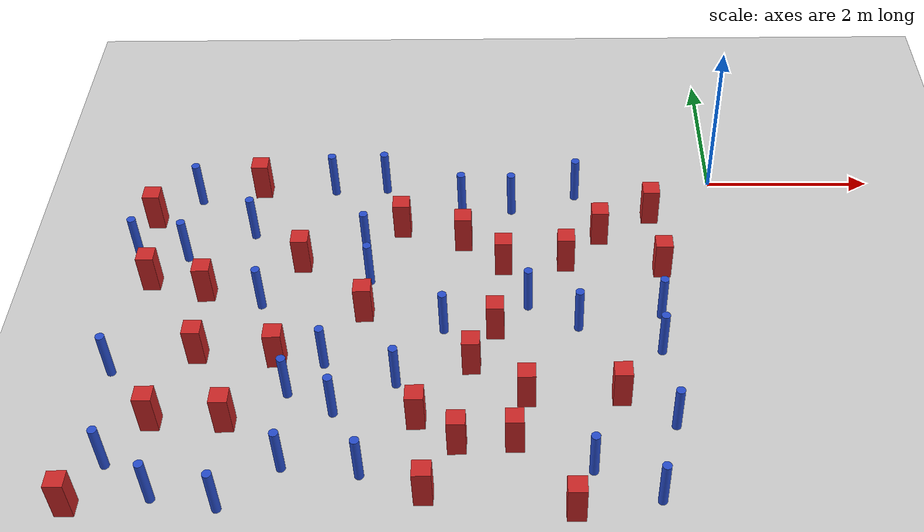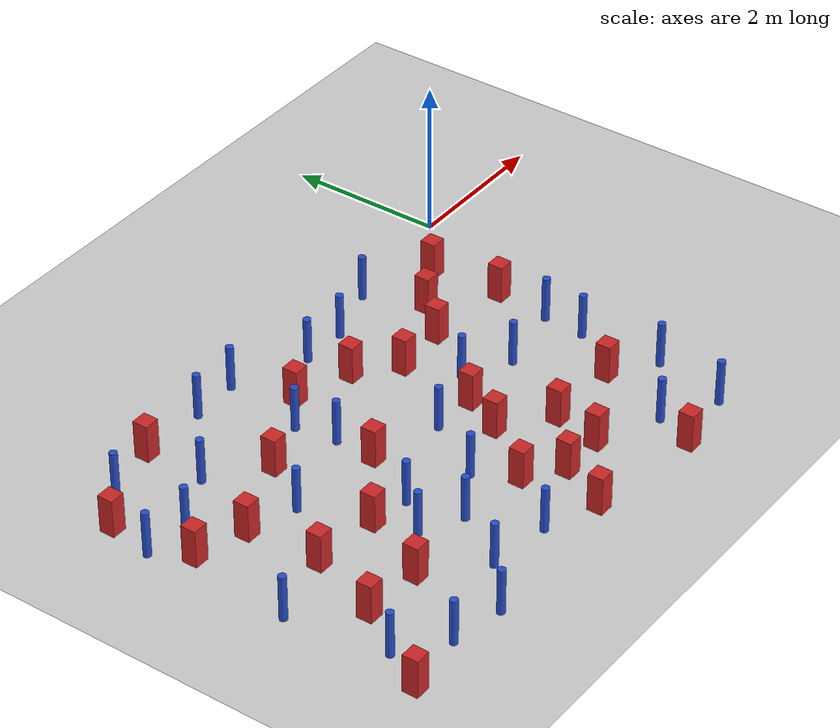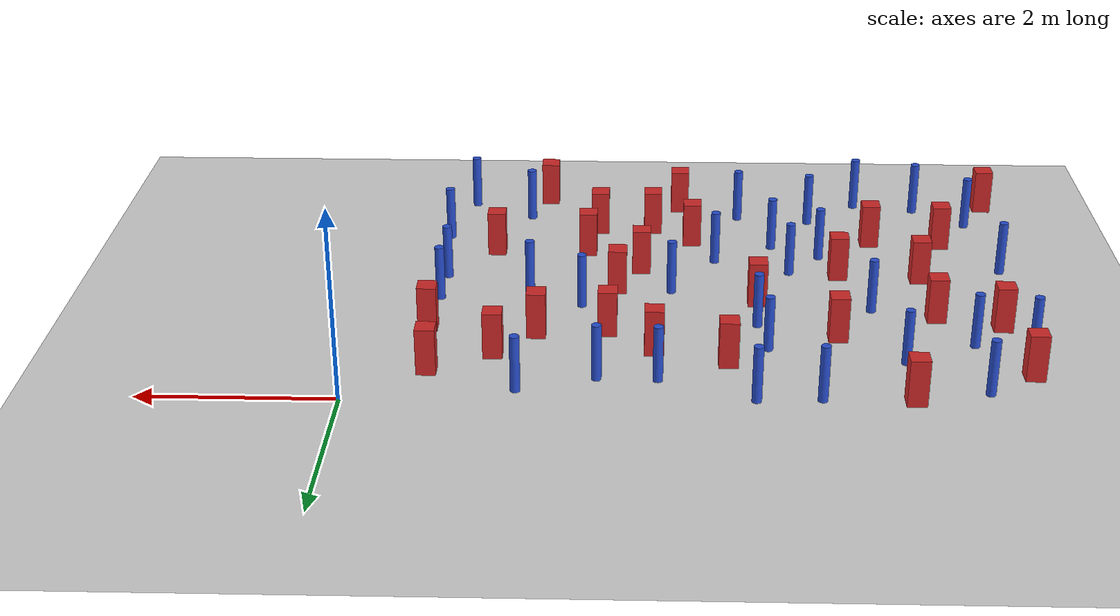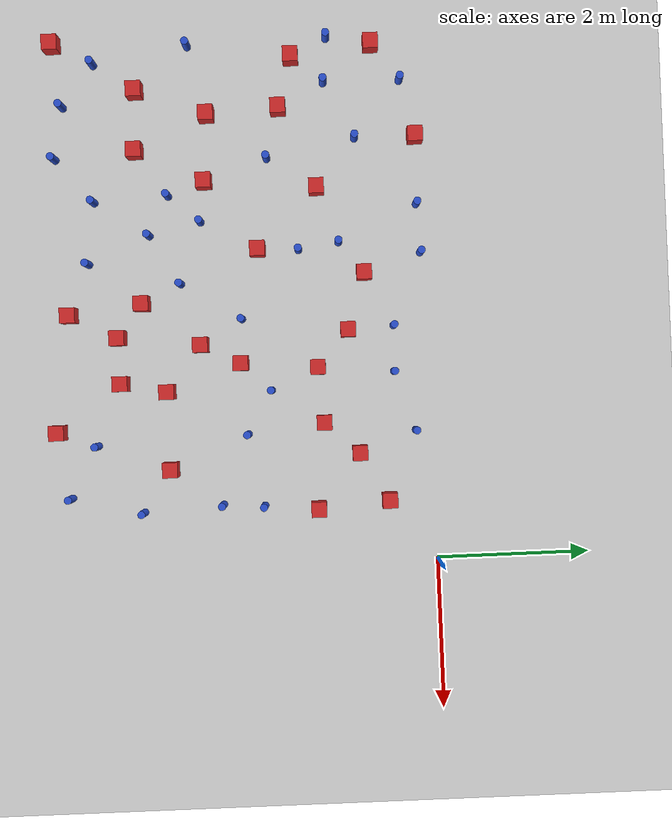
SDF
<sdf version="1.6">
 <world name="default">
  <model name="ground_plane">
   <static>1</static>
   <link name="link">
    <collision name="collision">
     <geometry><plane><normal>0 0 1</normal><size>100 100</size></plane></geometry>
     <surface><friction><ode><mu>100</mu><mu2>50</mu2></ode></friction></surface>
    </collision>
    <visual name="visual">
     <cast_shadows>0</cast_shadows>
     <geometry><plane><normal>0 0 1</normal><size>100 100</size></plane></geometry>
     <material>
      <ambient>1.0 1.0 1.0 1.0</ambient>
      <diffuse>0.8 0.8 0.8 1.0</diffuse>
      <specular>0.01 0.01 0.01 1.000000</specular>
     </material>
    </visual>
   </link>
  </model>
  <model name="square_post_obstacle8">
   <static>true</static>
   <pose>-3.50885296934 -3.76705480236 1.91545236811e-07 -7.35059704564e-06 1.12565212e-07 2.39332434364e-05</pose>
   <link name="link">
    <pose>0 0 0.25 0 -0 0</pose>
    <inertial>
     <mass>100</mass>
     <inertia>
      <ixx>0.166667</ixx>
      <ixy>0</ixy>
      <ixz>0</ixz>
      <iyy>0.166667</iyy>
      <iyz>0</iyz>
      <izz>0.166667</izz>
     </inertia>
    </inertial>
    <collision name="collision"><geometry><box><size>.2 .2 .5</size></box></geometry></collision>
    <visual name="visual">
     <geometry><box><size>.2 .2 .5</size></box></geometry>
     <material>
      <script><name>Gazebo/Red</name><uri>file://media/materials/scripts/gazebo.material</uri></script>
     </material>
    </visual>
   </link>
  </model>
  <model name="square_post_obstacle13">
   <static>true</static>
   <pose>-4.16992679024 -2.21531199736 1.91545236811e-07 -7.35059704564e-06 1.12565212e-07 2.39332434364e-05</pose>
   <link name="link">
    <pose>0 0 0.25 0 -0 0</pose>
    <inertial>
     <mass>100</mass>
     <inertia>
      <ixx>0.166667</ixx>
      <ixy>0</ixy>
      <ixz>0</ixz>
      <iyy>0.166667</iyy>
      <iyz>0</iyz>
      <izz>0.166667</izz>
     </inertia>
    </inertial>
    <collision name="collision"><geometry><box><size>.2 .2 .5</size></box></geometry></collision>
    <visual name="visual">
     <geometry><box><size>.2 .2 .5</size></box></geometry>
     <material>
      <script><name>Gazebo/Red</name><uri>file://media/materials/scripts/gazebo.material</uri></script>
     </material>
    </visual>
   </link>
  </model>
  <model name="square_post_obstacle20">
   <static>true</static>
   <pose>-2.93497238038 -3.01322514498 1.91545236811e-07 -7.35059704564e-06 1.12565212e-07 2.39332434364e-05</pose>
   <link name="link">
    <pose>0 0 0.25 0 -0 0</pose>
    <inertial>
     <mass>100</mass>
     <inertia>
      <ixx>0.166667</ixx>
      <ixy>0</ixy>
      <ixz>0</ixz>
      <iyy>0.166667</iyy>
      <iyz>0</iyz>
      <izz>0.166667</izz>
     </inertia>
    </inertial>
    <collision name="collision"><geometry><box><size>.2 .2 .5</size></box></geometry></collision>
    <visual name="visual">
     <geometry><box><size>.2 .2 .5</size></box></geometry>
     <material>
      <script><name>Gazebo/Red</name><uri>file://media/materials/scripts/gazebo.material</uri></script>
     </material>
    </visual>
   </link>
  </model>
  <model name="pole_obstacle13">
   <static>true</static>
   <pose>-5.36995046791 -2.05261547743 7.38925637345e-09 -8.47170692798e-08 1.24976764937e-08 -1.74513093023e-07</pose>
   <link name="link">
    <pose>0 0 0.3 0 -0 0</pose>
    <inertial>
     <mass>1</mass>
     <inertia><ixx>0.145833</ixx><ixy>0</ixy><ixz>0</ixz><iyy>0.145833</iyy><iyz>0</iyz><izz>0.125</izz></inertia>
    </inertial>
    <collision name="collision">
     <geometry><cylinder><radius>0.05</radius><length>.6</length></cylinder></geometry>
    </collision>
    <visual name="visual">
     <geometry><cylinder><radius>0.05</radius><length>.6</length></cylinder></geometry>
     <material>
      <script><name>Gazebo/Blue</name><uri>file://media/materials/scripts/gazebo.material</uri></script>
     </material>
    </visual>
   </link>
  </model>
  <model name="pole_obstacle14">
   <static>true</static>
   <pose>-2.30070272492 -2.10515329835 7.38925637345e-09 -8.47170692798e-08 1.24976764939e-08 -1.74513093025e-07</pose>
   <link name="link">
    <pose>0 0 0.3 0 -0 0</pose>
    <inertial>
     <mass>1</mass>
     <inertia><ixx>0.145833</ixx><ixy>0</ixy><ixz>0</ixz><iyy>0.145833</iyy><iyz>0</iyz><izz>0.125</izz></inertia>
    </inertial>
    <collision name="collision">
     <geometry><cylinder><radius>0.05</radius><length>.6</length></cylinder></geometry>
    </collision>
    <visual name="visual">
     <geometry><cylinder><radius>0.05</radius><length>.6</length></cylinder></geometry>
     <material>
      <script><name>Gazebo/Blue</name><uri>file://media/materials/scripts/gazebo.material</uri></script>
     </material>
    </visual>
   </link>
  </model>
  <model name="square_post_obstacle24">
   <static>true</static>
   <pose>-1.85153027986 -4.93886895297 1.91545236811e-07 -7.35059704564e-06 1.12565212e-07 2.39332434364e-05</pose>
   <link name="link">
    <pose>0 0 0.25 0 -0 0</pose>
    <inertial>
     <mass>100</mass>
     <inertia>
      <ixx>0.166667</ixx>
      <ixy>0</ixy>
      <ixz>0</ixz>
      <iyy>0.166667</iyy>
      <iyz>0</iyz>
      <izz>0.166667</izz>
     </inertia>
    </inertial>
    <collision name="collision"><geometry><box><size>.2 .2 .5</size></box></geometry></collision>
    <visual name="visual">
     <geometry><box><size>.2 .2 .5</size></box></geometry>
     <material>
      <script><name>Gazebo/Red</name><uri>file://media/materials/scripts/gazebo.material</uri></script>
     </material>
    </visual>
   </link>
  </model>
  <model name="square_post_obstacle28">
   <static>true</static>
   <pose>-0.715513095429 -1.54085385511 1.91545236811e-07 -7.35059704564e-06 1.12565212e-07 2.39332434364e-05</pose>
   <link name="link">
    <pose>0 0 0.25 0 -0 0</pose>
    <inertial>
     <mass>100</mass>
     <inertia>
      <ixx>0.166667</ixx>
      <ixy>0</ixy>
      <ixz>0</ixz>
      <iyy>0.166667</iyy>
      <iyz>0</iyz>
      <izz>0.166667</izz>
     </inertia>
    </inertial>
    <collision name="collision"><geometry><box><size>.2 .2 .5</size></box></geometry></collision>
    <visual name="visual">
     <geometry><box><size>.2 .2 .5</size></box></geometry>
     <material>
      <script><name>Gazebo/Red</name><uri>file://media/materials/scripts/gazebo.material</uri></script>
     </material>
    </visual>
   </link>
  </model>
  <model name="square_post_obstacle30">
   <static>true</static>
   <pose>-6.97034201586 -4.82456648021 1.91545236811e-07 -7.35059704564e-06 1.12565212e-07 2.39332434364e-05</pose>
   <link name="link">
    <pose>0 0 0.25 0 -0 0</pose>
    <inertial>
     <mass>100</mass>
     <inertia>
      <ixx>0.166667</ixx>
      <ixy>0</ixy>
      <ixz>0</ixz>
      <iyy>0.166667</iyy>
      <iyz>0</iyz>
      <izz>0.166667</izz>
     </inertia>
    </inertial>
    <collision name="collision"><geometry><box><size>.2 .2 .5</size></box></geometry></collision>
    <visual name="visual">
     <geometry><box><size>.2 .2 .5</size></box></geometry>
     <material>
      <script><name>Gazebo/Red</name><uri>file://media/materials/scripts/gazebo.material</uri></script>
     </material>
    </visual>
   </link>
  </model>
  <model name="pole_obstacle21">
   <static>true</static>
   <pose>-4.0481126402 -0.070048766778 7.38925637345e-09 -8.471706928e-08 1.24976765153e-08 -1.74513093013e-07</pose>
   <link name="link">
    <pose>0 0 0.3 0 -0 0</pose>
    <inertial>
     <mass>1</mass>
     <inertia><ixx>0.145833</ixx><ixy>0</ixy><ixz>0</ixz><iyy>0.145833</iyy><iyz>0</iyz><izz>0.125</izz></inertia>
    </inertial>
    <collision name="collision">
     <geometry><cylinder><radius>0.05</radius><length>.6</length></cylinder></geometry>
    </collision>
    <visual name="visual">
     <geometry><cylinder><radius>0.05</radius><length>.6</length></cylinder></geometry>
     <material>
      <script><name>Gazebo/Blue</name><uri>file://media/materials/scripts/gazebo.material</uri></script>
     </material>
    </visual>
   </link>
  </model>
  <model name="pole_obstacle22">
   <static>true</static>
   <pose>-0.749253565778 -3.85481929524 7.38925637345e-09 -8.47170692799e-08 1.2497676509e-08 -1.74513093016e-07</pose>
   <link name="link">
    <pose>0 0 0.3 0 -0 0</pose>
    <inertial>
     <mass>1</mass>
     <inertia><ixx>0.145833</ixx><ixy>0</ixy><ixz>0</ixz><iyy>0.145833</iyy><iyz>0</iyz><izz>0.125</izz></inertia>
    </inertial>
    <collision name="collision">
     <geometry><cylinder><radius>0.05</radius><length>.6</length></cylinder></geometry>
    </collision>
    <visual name="visual">
     <geometry><cylinder><radius>0.05</radius><length>.6</length></cylinder></geometry>
     <material>
      <script><name>Gazebo/Blue</name><uri>file://media/materials/scripts/gazebo.material</uri></script>
     </material>
    </visual>
   </link>
  </model>
  <model name="pole_obstacle28">
   <static>true</static>
   <pose>-1.70135411416 -0.22149524721 7.38925637345e-09 -8.47170692798e-08 1.24976764982e-08 -1.74513093023e-07</pose>
   <link name="link">
    <pose>0 0 0.3 0 -0 0</pose>
    <inertial>
     <mass>1</mass>
     <inertia><ixx>0.145833</ixx><ixy>0</ixy><ixz>0</ixz><iyy>0.145833</iyy><iyz>0</iyz><izz>0.125</izz></inertia>
    </inertial>
    <collision name="collision">
     <geometry><cylinder><radius>0.05</radius><length>.6</length></cylinder></geometry>
    </collision>
    <visual name="visual">
     <geometry><cylinder><radius>0.05</radius><length>.6</length></cylinder></geometry>
     <material>
      <script><name>Gazebo/Blue</name><uri>file://media/materials/scripts/gazebo.material</uri></script>
     </material>
    </visual>
   </link>
  </model>
  <model name="pole_obstacle31">
   <static>true</static>
   <pose>-2.48924332453 -0.478023941891 7.38925637345e-09 -8.471706928e-08 1.2497676509e-08 -1.74513093016e-07</pose>
   <link name="link">
    <pose>0 0 0.3 0 -0 0</pose>
    <inertial>
     <mass>1</mass>
     <inertia><ixx>0.145833</ixx><ixy>0</ixy><ixz>0</ixz><iyy>0.145833</iyy><iyz>0</iyz><izz>0.125</izz></inertia>
    </inertial>
    <collision name="collision">
     <geometry><cylinder><radius>0.05</radius><length>.6</length></cylinder></geometry>
    </collision>
    <visual name="visual">
     <geometry><cylinder><radius>0.05</radius><length>.6</length></cylinder></geometry>
     <material>
      <script><name>Gazebo/Blue</name><uri>file://media/materials/scripts/gazebo.material</uri></script>
     </material>
    </visual>
   </link>
  </model>
  <model name="pole_obstacle37">
   <static>true</static>
   <pose>-6.34415291776 -1.2671829582 7.38925637345e-09 -8.471706928e-08 1.24976765134e-08 -1.74513093015e-07</pose>
   <link name="link">
    <pose>0 0 0.3 0 -0 0</pose>
    <inertial>
     <mass>1</mass>
     <inertia><ixx>0.145833</ixx><ixy>0</ixy><ixz>0</ixz><iyy>0.145833</iyy><iyz>0</iyz><izz>0.125</izz></inertia>
    </inertial>
    <collision name="collision">
     <geometry><cylinder><radius>0.05</radius><length>.6</length></cylinder></geometry>
    </collision>
    <visual name="visual">
     <geometry><cylinder><radius>0.05</radius><length>.6</length></cylinder></geometry>
     <material>
      <script><name>Gazebo/Blue</name><uri>file://media/materials/scripts/gazebo.material</uri></script>
     </material>
    </visual>
   </link>
  </model>
  <model name="square_post_obstacle56">
   <static>true</static>
   <pose>-1.43219768758 -0.971955510996 1.91545236811e-07 -7.35059704564e-06 1.12565212e-07 2.39332434364e-05</pose>
   <link name="link">
    <pose>0 0 0.25 0 -0 0</pose>
    <inertial>
     <mass>100</mass>
     <inertia>
      <ixx>0.166667</ixx>
      <ixy>0</ixy>
      <ixz>0</ixz>
      <iyy>0.166667</iyy>
      <iyz>0</iyz>
      <izz>0.166667</izz>
     </inertia>
    </inertial>
    <collision name="collision"><geometry><box><size>.2 .2 .5</size></box></geometry></collision>
    <visual name="visual">
     <geometry><box><size>.2 .2 .5</size></box></geometry>
     <material>
      <script><name>Gazebo/Red</name><uri>file://media/materials/scripts/gazebo.material</uri></script>
     </material>
    </visual>
   </link>
  </model>
  <model name="square_post_obstacle62">
   <static>true</static>
   <pose>-5.52889303577 -3.7830511791 1.91545236811e-07 -7.35059704564e-06 1.12565212e-07 2.39332434364e-05</pose>
   <link name="link">
    <pose>0 0 0.25 0 -0 0</pose>
    <inertial>
     <mass>100</mass>
     <inertia>
      <ixx>0.166667</ixx>
      <ixy>0</ixy>
      <ixz>0</ixz>
      <iyy>0.166667</iyy>
      <iyz>0</iyz>
      <izz>0.166667</izz>
     </inertia>
    </inertial>
    <collision name="collision"><geometry><box><size>.2 .2 .5</size></box></geometry></collision>
    <visual name="visual">
     <geometry><box><size>.2 .2 .5</size></box></geometry>
     <material>
      <script><name>Gazebo/Red</name><uri>file://media/materials/scripts/gazebo.material</uri></script>
     </material>
    </visual>
   </link>
  </model>
  <model name="pole_obstacle62">
   <static>true</static>
   <pose>-0.811082550551 -2.80279782522 7.38925637345e-09 -8.47170692799e-08 1.2497676509e-08 -1.74513093016e-07</pose>
   <link name="link">
    <pose>0 0 0.3 0 -0 0</pose>
    <inertial>
     <mass>1</mass>
     <inertia><ixx>0.145833</ixx><ixy>0</ixy><ixz>0</ixz><iyy>0.145833</iyy><iyz>0</iyz><izz>0.125</izz></inertia>
    </inertial>
    <collision name="collision">
     <geometry><cylinder><radius>0.05</radius><length>.6</length></cylinder></geometry>
    </collision>
    <visual name="visual">
     <geometry><cylinder><radius>0.05</radius><length>.6</length></cylinder></geometry>
     <material>
      <script><name>Gazebo/Blue</name><uri>file://media/materials/scripts/gazebo.material</uri></script>
     </material>
    </visual>
   </link>
  </model>
  <model name="pole_obstacle67">
   <static>true</static>
   <pose>-0.974625489835 -4.8024280334 7.38925637345e-09 -8.47170692799e-08 1.2497676509e-08 -1.74513093015e-07</pose>
   <link name="link">
    <pose>0 0 0.3 0 -0 0</pose>
    <inertial>
     <mass>1</mass>
     <inertia><ixx>0.145833</ixx><ixy>0</ixy><ixz>0</ixz><iyy>0.145833</iyy><iyz>0</iyz><izz>0.125</izz></inertia>
    </inertial>
    <collision name="collision">
     <geometry><cylinder><radius>0.05</radius><length>.6</length></cylinder></geometry>
    </collision>
    <visual name="visual">
     <geometry><cylinder><radius>0.05</radius><length>.6</length></cylinder></geometry>
     <material>
      <script><name>Gazebo/Blue</name><uri>file://media/materials/scripts/gazebo.material</uri></script>
     </material>
    </visual>
   </link>
  </model>
  <model name="pole_obstacle68">
   <static>true</static>
   <pose>-6.33371758601 -0.260582448378 7.38925637345e-09 -8.47170692801e-08 1.24976765176e-08 -1.74513093013e-07</pose>
   <link name="link">
    <pose>0 0 0.3 0 -0 0</pose>
    <inertial>
     <mass>1</mass>
     <inertia><ixx>0.145833</ixx><ixy>0</ixy><ixz>0</ixz><iyy>0.145833</iyy><iyz>0</iyz><izz>0.125</izz></inertia>
    </inertial>
    <collision name="collision">
     <geometry><cylinder><radius>0.05</radius><length>.6</length></cylinder></geometry>
    </collision>
    <visual name="visual">
     <geometry><cylinder><radius>0.05</radius><length>.6</length></cylinder></geometry>
     <material>
      <script><name>Gazebo/Blue</name><uri>file://media/materials/scripts/gazebo.material</uri></script>
     </material>
    </visual>
   </link>
  </model>
  <model name="square_post_obstacle74">
   <static>true</static>
   <pose>-4.95555530657 -1.40984395401 1.91545236811e-07 -7.35059704564e-06 1.12565212e-07 2.39332434364e-05</pose>
   <link name="link">
    <pose>0 0 0.25 0 -0 0</pose>
    <inertial>
     <mass>100</mass>
     <inertia>
      <ixx>0.166667</ixx>
      <ixy>0</ixy>
      <ixz>0</ixz>
      <iyy>0.166667</iyy>
      <iyz>0</iyz>
      <izz>0.166667</izz>
     </inertia>
    </inertial>
    <collision name="collision"><geometry><box><size>.2 .2 .5</size></box></geometry></collision>
    <visual name="visual">
     <geometry><box><size>.2 .2 .5</size></box></geometry>
     <material>
      <script><name>Gazebo/Red</name><uri>file://media/materials/scripts/gazebo.material</uri></script>
     </material>
    </visual>
   </link>
  </model>
  <model name="pole_obstacle76">
   <static>true</static>
   <pose>-4.22513522008 -1.14646456597 7.38925637345e-09 -8.471706928e-08 1.24976765134e-08 -1.74513093015e-07</pose>
   <link name="link">
    <pose>0 0 0.3 0 -0 0</pose>
    <inertial>
     <mass>1</mass>
     <inertia><ixx>0.145833</ixx><ixy>0</ixy><ixz>0</ixz><iyy>0.145833</iyy><iyz>0</iyz><izz>0.125</izz></inertia>
    </inertial>
    <collision name="collision">
     <geometry><cylinder><radius>0.05</radius><length>.6</length></cylinder></geometry>
    </collision>
    <visual name="visual">
     <geometry><cylinder><radius>0.05</radius><length>.6</length></cylinder></geometry>
     <material>
      <script><name>Gazebo/Blue</name><uri>file://media/materials/scripts/gazebo.material</uri></script>
     </material>
    </visual>
   </link>
  </model>
  <model name="pole_obstacle85">
   <static>true</static>
   <pose>-4.06149069841 -4.46095868536 7.38925637345e-09 -8.47170692796e-08 1.24976764786e-08 -1.74513093032e-07</pose>
   <link name="link">
    <pose>0 0 0.3 0 -0 0</pose>
    <inertial>
     <mass>1</mass>
     <inertia><ixx>0.145833</ixx><ixy>0</ixy><ixz>0</ixz><iyy>0.145833</iyy><iyz>0</iyz><izz>0.125</izz></inertia>
    </inertial>
    <collision name="collision">
     <geometry><cylinder><radius>0.05</radius><length>.6</length></cylinder></geometry>
    </collision>
    <visual name="visual">
     <geometry><cylinder><radius>0.05</radius><length>.6</length></cylinder></geometry>
     <material>
      <script><name>Gazebo/Blue</name><uri>file://media/materials/scripts/gazebo.material</uri></script>
     </material>
    </visual>
   </link>
  </model>
  <model name="pole_obstacle89">
   <static>true</static>
   <pose>-4.56397584601 -2.95991311556 7.38925637345e-09 -8.47170692798e-08 1.24976764937e-08 -1.74513093023e-07</pose>
   <link name="link">
    <pose>0 0 0.3 0 -0 0</pose>
    <inertial>
     <mass>1</mass>
     <inertia><ixx>0.145833</ixx><ixy>0</ixy><ixz>0</ixz><iyy>0.145833</iyy><iyz>0</iyz><izz>0.125</izz></inertia>
    </inertial>
    <collision name="collision">
     <geometry><cylinder><radius>0.05</radius><length>.6</length></cylinder></geometry>
    </collision>
    <visual name="visual">
     <geometry><cylinder><radius>0.05</radius><length>.6</length></cylinder></geometry>
     <material>
      <script><name>Gazebo/Blue</name><uri>file://media/materials/scripts/gazebo.material</uri></script>
     </material>
    </visual>
   </link>
  </model>
  <model name="pole_obstacle91">
   <static>true</static>
   <pose>-6.89452118551 -3.04671661144 7.38925637345e-09 -8.47170692798e-08 1.24976764937e-08 -1.74513093023e-07</pose>
   <link name="link">
    <pose>0 0 0.3 0 -0 0</pose>
    <inertial>
     <mass>1</mass>
     <inertia><ixx>0.145833</ixx><ixy>0</ixy><ixz>0</ixz><iyy>0.145833</iyy><iyz>0</iyz><izz>0.125</izz></inertia>
    </inertial>
    <collision name="collision">
     <geometry><cylinder><radius>0.05</radius><length>.6</length></cylinder></geometry>
    </collision>
    <visual name="visual">
     <geometry><cylinder><radius>0.05</radius><length>.6</length></cylinder></geometry>
     <material>
      <script><name>Gazebo/Blue</name><uri>file://media/materials/scripts/gazebo.material</uri></script>
     </material>
    </visual>
   </link>
  </model>
  <model name="square_post_obstacle89">
   <static>true</static>
   <pose>-6.02554167895 -1.87385205366 1.91545236811e-07 -7.35059704564e-06 1.12565212e-07 2.39332434364e-05</pose>
   <link name="link">
    <pose>0 0 0.25 0 -0 0</pose>
    <inertial>
     <mass>100</mass>
     <inertia>
      <ixx>0.166667</ixx>
      <ixy>0</ixy>
      <ixz>0</ixz>
      <iyy>0.166667</iyy>
      <iyz>0</iyz>
      <izz>0.166667</izz>
     </inertia>
    </inertial>
    <collision name="collision"><geometry><box><size>.2 .2 .5</size></box></geometry></collision>
    <visual name="visual">
     <geometry><box><size>.2 .2 .5</size></box></geometry>
     <material>
      <script><name>Gazebo/Red</name><uri>file://media/materials/scripts/gazebo.material</uri></script>
     </material>
    </visual>
   </link>
  </model>
  <model name="square_post_obstacle90">
   <static>true</static>
   <pose>-5.97282222261 -2.82260944853 1.91545236811e-07 -7.35059704564e-06 1.12565212e-07 2.39332434364e-05</pose>
   <link name="link">
    <pose>0 0 0.25 0 -0 0</pose>
    <inertial>
     <mass>100</mass>
     <inertia>
      <ixx>0.166667</ixx>
      <ixy>0</ixy>
      <ixz>0</ixz>
      <iyy>0.166667</iyy>
      <iyz>0</iyz>
      <izz>0.166667</izz>
     </inertia>
    </inertial>
    <collision name="collision"><geometry><box><size>.2 .2 .5</size></box></geometry></collision>
    <visual name="visual">
     <geometry><box><size>.2 .2 .5</size></box></geometry>
     <material>
      <script><name>Gazebo/Red</name><uri>file://media/materials/scripts/gazebo.material</uri></script>
     </material>
    </visual>
   </link>
  </model>
  <model name="square_post_obstacle91">
   <static>true</static>
   <pose>-3.38909326747 -4.73296432064 1.91545236811e-07 -7.35059704564e-06 1.12565212e-07 2.39332434364e-05</pose>
   <link name="link">
    <pose>0 0 0.25 0 -0 0</pose>
    <inertial>
     <mass>100</mass>
     <inertia>
      <ixx>0.166667</ixx>
      <ixy>0</ixy>
      <ixz>0</ixz>
      <iyy>0.166667</iyy>
      <iyz>0</iyz>
      <izz>0.166667</izz>
     </inertia>
    </inertial>
    <collision name="collision"><geometry><box><size>.2 .2 .5</size></box></geometry></collision>
    <visual name="visual">
     <geometry><box><size>.2 .2 .5</size></box></geometry>
     <material>
      <script><name>Gazebo/Red</name><uri>file://media/materials/scripts/gazebo.material</uri></script>
     </material>
    </visual>
   </link>
  </model>
  <model name="pole_obstacle106">
   <static>true</static>
   <pose>-4.40677157438 -3.64468680643 7.38925637345e-09 -8.47170692798e-08 1.24976764937e-08 -1.74513093023e-07</pose>
   <link name="link">
    <pose>0 0 0.3 0 -0 0</pose>
    <inertial>
     <mass>1</mass>
     <inertia><ixx>0.145833</ixx><ixy>0</ixy><ixz>0</ixz><iyy>0.145833</iyy><iyz>0</iyz><izz>0.125</izz></inertia>
    </inertial>
    <collision name="collision">
     <geometry><cylinder><radius>0.05</radius><length>.6</length></cylinder></geometry>
    </collision>
    <visual name="visual">
     <geometry><cylinder><radius>0.05</radius><length>.6</length></cylinder></geometry>
     <material>
      <script><name>Gazebo/Blue</name><uri>file://media/materials/scripts/gazebo.material</uri></script>
     </material>
    </visual>
   </link>
  </model>
  <model name="square_post_obstacle96">
   <static>true</static>
   <pose>-6.69093722382 -1.68230086823 1.91545236811e-07 -7.35059704564e-06 1.12565212e-07 2.39332434364e-05</pose>
   <link name="link">
    <pose>0 0 0.25 0 -0 0</pose>
    <inertial>
     <mass>100</mass>
     <inertia>
      <ixx>0.166667</ixx>
      <ixy>0</ixy>
      <ixz>0</ixz>
      <iyy>0.166667</iyy>
      <iyz>0</iyz>
      <izz>0.166667</izz>
     </inertia>
    </inertial>
    <collision name="collision"><geometry><box><size>.2 .2 .5</size></box></geometry></collision>
    <visual name="visual">
     <geometry><box><size>.2 .2 .5</size></box></geometry>
     <material>
      <script><name>Gazebo/Red</name><uri>file://media/materials/scripts/gazebo.material</uri></script>
     </material>
    </visual>
   </link>
  </model>
  <model name="pole_obstacle109">
   <static>true</static>
   <pose>-3.25760863869 -2.46257174359 7.38925637345e-09 -8.47170692798e-08 1.24976764939e-08 -1.74513093025e-07</pose>
   <link name="link">
    <pose>0 0 0.3 0 -0 0</pose>
    <inertial>
     <mass>1</mass>
     <inertia><ixx>0.145833</ixx><ixy>0</ixy><ixz>0</ixz><iyy>0.145833</iyy><iyz>0</iyz><izz>0.125</izz></inertia>
    </inertial>
    <collision name="collision">
     <geometry><cylinder><radius>0.05</radius><length>.6</length></cylinder></geometry>
    </collision>
    <visual name="visual">
     <geometry><cylinder><radius>0.05</radius><length>.6</length></cylinder></geometry>
     <material>
      <script><name>Gazebo/Blue</name><uri>file://media/materials/scripts/gazebo.material</uri></script>
     </material>
    </visual>
   </link>
  </model>
  <model name="pole_obstacle113">
   <static>true</static>
   <pose>-6.92977037409 -1.20905931838 7.38925637345e-09 -8.471706928e-08 1.24976765134e-08 -1.74513093015e-07</pose>
   <link name="link">
    <pose>0 0 0.3 0 -0 0</pose>
    <inertial>
     <mass>1</mass>
     <inertia><ixx>0.145833</ixx><ixy>0</ixy><ixz>0</ixz><iyy>0.145833</iyy><iyz>0</iyz><izz>0.125</izz></inertia>
    </inertial>
    <collision name="collision">
     <geometry><cylinder><radius>0.05</radius><length>.6</length></cylinder></geometry>
    </collision>
    <visual name="visual">
     <geometry><cylinder><radius>0.05</radius><length>.6</length></cylinder></geometry>
     <material>
      <script><name>Gazebo/Blue</name><uri>file://media/materials/scripts/gazebo.material</uri></script>
     </material>
    </visual>
   </link>
  </model>
  <model name="square_post_obstacle100">
   <static>true</static>
   <pose>-3.06222931083 -1.06646127757 1.91545236811e-07 -7.35059704564e-06 1.12565212e-07 2.39332434364e-05</pose>
   <link name="link">
    <pose>0 0 0.25 0 -0 0</pose>
    <inertial>
     <mass>100</mass>
     <inertia>
      <ixx>0.166667</ixx>
      <ixy>0</ixy>
      <ixz>0</ixz>
      <iyy>0.166667</iyy>
      <iyz>0</iyz>
      <izz>0.166667</izz>
     </inertia>
    </inertial>
    <collision name="collision"><geometry><box><size>.2 .2 .5</size></box></geometry></collision>
    <visual name="visual">
     <geometry><box><size>.2 .2 .5</size></box></geometry>
     <material>
      <script><name>Gazebo/Red</name><uri>file://media/materials/scripts/gazebo.material</uri></script>
     </material>
    </visual>
   </link>
  </model>
  <model name="square_post_obstacle101">
   <static>true</static>
   <pose>-6.32028591094 -3.75292665249 1.91545236811e-07 -7.35059704564e-06 1.12565212e-07 2.39332434364e-05</pose>
   <link name="link">
    <pose>0 0 0.25 0 -0 0</pose>
    <inertial>
     <mass>100</mass>
     <inertia>
      <ixx>0.166667</ixx>
      <ixy>0</ixy>
      <ixz>0</ixz>
      <iyy>0.166667</iyy>
      <iyz>0</iyz>
      <izz>0.166667</izz>
     </inertia>
    </inertial>
    <collision name="collision"><geometry><box><size>.2 .2 .5</size></box></geometry></collision>
    <visual name="visual">
     <geometry><box><size>.2 .2 .5</size></box></geometry>
     <material>
      <script><name>Gazebo/Red</name><uri>file://media/materials/scripts/gazebo.material</uri></script>
     </material>
    </visual>
   </link>
  </model>
  <model name="square_post_obstacle103">
   <static>true</static>
   <pose>-2.46268780999 -4.08212364053 1.91545236811e-07 -7.35059704564e-06 1.12565212e-07 2.39332434364e-05</pose>
   <link name="link">
    <pose>0 0 0.25 0 -0 0</pose>
    <inertial>
     <mass>100</mass>
     <inertia>
      <ixx>0.166667</ixx>
      <ixy>0</ixy>
      <ixz>0</ixz>
      <iyy>0.166667</iyy>
      <iyz>0</iyz>
      <izz>0.166667</izz>
     </inertia>
    </inertial>
    <collision name="collision"><geometry><box><size>.2 .2 .5</size></box></geometry></collision>
    <visual name="visual">
     <geometry><box><size>.2 .2 .5</size></box></geometry>
     <material>
      <script><name>Gazebo/Red</name><uri>file://media/materials/scripts/gazebo.material</uri></script>
     </material>
    </visual>
   </link>
  </model>
  <model name="square_post_obstacle110">
   <static>true</static>
   <pose>-3.0676509192 -4.09989314758 1.91545236811e-07 -7.35059704564e-06 1.12565212e-07 2.39332434364e-05</pose>
   <link name="link">
    <pose>0 0 0.25 0 -0 0</pose>
    <inertial>
     <mass>100</mass>
     <inertia>
      <ixx>0.166667</ixx>
      <ixy>0</ixy>
      <ixz>0</ixz>
      <iyy>0.166667</iyy>
      <iyz>0</iyz>
      <izz>0.166667</izz>
     </inertia>
    </inertial>
    <collision name="collision"><geometry><box><size>.2 .2 .5</size></box></geometry></collision>
    <visual name="visual">
     <geometry><box><size>.2 .2 .5</size></box></geometry>
     <material>
      <script><name>Gazebo/Red</name><uri>file://media/materials/scripts/gazebo.material</uri></script>
     </material>
    </visual>
   </link>
  </model>
  <model name="square_post_obstacle111">
   <static>true</static>
   <pose>-0.79566664765 -0.605919131716 1.91545236811e-07 -7.35059704564e-06 1.12565212e-07 2.39332434364e-05</pose>
   <link name="link">
    <pose>0 0 0.25 0 -0 0</pose>
    <inertial>
     <mass>100</mass>
     <inertia>
      <ixx>0.166667</ixx>
      <ixy>0</ixy>
      <ixz>0</ixz>
      <iyy>0.166667</iyy>
      <iyz>0</iyz>
      <izz>0.166667</izz>
     </inertia>
    </inertial>
    <collision name="collision"><geometry><box><size>.2 .2 .5</size></box></geometry></collision>
    <visual name="visual">
     <geometry><box><size>.2 .2 .5</size></box></geometry>
     <material>
      <script><name>Gazebo/Red</name><uri>file://media/materials/scripts/gazebo.material</uri></script>
     </material>
    </visual>
   </link>
  </model>
  <model name="pole_obstacle120">
   <static>true</static>
   <pose>-5.46246613122 -4.85148749065 7.38925637345e-09 -8.47170692796e-08 1.24976764786e-08 -1.74513093032e-07</pose>
   <link name="link">
    <pose>0 0 0.3 0 -0 0</pose>
    <inertial>
     <mass>1</mass>
     <inertia><ixx>0.145833</ixx><ixy>0</ixy><ixz>0</ixz><iyy>0.145833</iyy><iyz>0</iyz><izz>0.125</izz></inertia>
    </inertial>
    <collision name="collision">
     <geometry><cylinder><radius>0.05</radius><length>.6</length></cylinder></geometry>
    </collision>
    <visual name="visual">
     <geometry><cylinder><radius>0.05</radius><length>.6</length></cylinder></geometry>
     <material>
      <script><name>Gazebo/Blue</name><uri>file://media/materials/scripts/gazebo.material</uri></script>
     </material>
    </visual>
   </link>
  </model>
  <model name="pole_obstacle132">
   <static>true</static>
   <pose>-6.14970648858 -4.72581447203 7.38925637345e-09 -8.47170692796e-08 1.24976764786e-08 -1.74513093032e-07</pose>
   <link name="link">
    <pose>0 0 0.3 0 -0 0</pose>
    <inertial>
     <mass>1</mass>
     <inertia><ixx>0.145833</ixx><ixy>0</ixy><ixz>0</ixz><iyy>0.145833</iyy><iyz>0</iyz><izz>0.125</izz></inertia>
    </inertial>
    <collision name="collision">
     <geometry><cylinder><radius>0.05</radius><length>.6</length></cylinder></geometry>
    </collision>
    <visual name="visual">
     <geometry><cylinder><radius>0.05</radius><length>.6</length></cylinder></geometry>
     <material>
      <script><name>Gazebo/Blue</name><uri>file://media/materials/scripts/gazebo.material</uri></script>
     </material>
    </visual>
   </link>
  </model>
  <model name="square_post_obstacle118">
   <static>true</static>
   <pose>-5.58495094742 -0.0877922594471 1.91545236811e-07 -7.35059704564e-06 1.12565212e-07 2.39332434364e-05</pose>
   <link name="link">
    <pose>0 0 0.25 0 -0 0</pose>
    <inertial>
     <mass>100</mass>
     <inertia>
      <ixx>0.166667</ixx>
      <ixy>0</ixy>
      <ixz>0</ixz>
      <iyy>0.166667</iyy>
      <iyz>0</iyz>
      <izz>0.166667</izz>
     </inertia>
    </inertial>
    <collision name="collision"><geometry><box><size>.2 .2 .5</size></box></geometry></collision>
    <visual name="visual">
     <geometry><box><size>.2 .2 .5</size></box></geometry>
     <material>
      <script><name>Gazebo/Red</name><uri>file://media/materials/scripts/gazebo.material</uri></script>
     </material>
    </visual>
   </link>
  </model>
  <model name="pole_obstacle143">
   <static>true</static>
   <pose>-1.65213004289 -4.43076060819 7.38925637345e-09 -8.47170692799e-08 1.24976765033e-08 -1.74513093018e-07</pose>
   <link name="link">
    <pose>0 0 0.3 0 -0 0</pose>
    <inertial>
     <mass>1</mass>
     <inertia><ixx>0.145833</ixx><ixy>0</ixy><ixz>0</ixz><iyy>0.145833</iyy><iyz>0</iyz><izz>0.125</izz></inertia>
    </inertial>
    <collision name="collision">
     <geometry><cylinder><radius>0.05</radius><length>.6</length></cylinder></geometry>
    </collision>
    <visual name="visual">
     <geometry><cylinder><radius>0.05</radius><length>.6</length></cylinder></geometry>
     <material>
      <script><name>Gazebo/Blue</name><uri>file://media/materials/scripts/gazebo.material</uri></script>
     </material>
    </visual>
   </link>
  </model>
  <model name="square_post_obstacle147">
   <static>true</static>
   <pose>-2.58277476043 -1.48170293931 1.91545236811e-07 -7.35059704564e-06 1.12565212e-07 2.39332434364e-05</pose>
   <link name="link">
    <pose>0 0 0.25 0 -0 0</pose>
    <inertial>
     <mass>100</mass>
     <inertia>
      <ixx>0.166667</ixx>
      <ixy>0</ixy>
      <ixz>0</ixz>
      <iyy>0.166667</iyy>
      <iyz>0</iyz>
      <izz>0.166667</izz>
     </inertia>
    </inertial>
    <collision name="collision"><geometry><box><size>.2 .2 .5</size></box></geometry></collision>
    <visual name="visual">
     <geometry><box><size>.2 .2 .5</size></box></geometry>
     <material>
      <script><name>Gazebo/Red</name><uri>file://media/materials/scripts/gazebo.material</uri></script>
     </material>
    </visual>
   </link>
  </model>
  <model name="square_post_obstacle155">
   <static>true</static>
   <pose>-2.33386735119 -3.4772638298 1.91545236811e-07 -7.35059704564e-06 1.12565212e-07 2.39332434364e-05</pose>
   <link name="link">
    <pose>0 0 0.25 0 -0 0</pose>
    <inertial>
     <mass>100</mass>
     <inertia>
      <ixx>0.166667</ixx>
      <ixy>0</ixy>
      <ixz>0</ixz>
      <iyy>0.166667</iyy>
      <iyz>0</iyz>
      <izz>0.166667</izz>
     </inertia>
    </inertial>
    <collision name="collision"><geometry><box><size>.2 .2 .5</size></box></geometry></collision>
    <visual name="visual">
     <geometry><box><size>.2 .2 .5</size></box></geometry>
     <material>
      <script><name>Gazebo/Red</name><uri>file://media/materials/scripts/gazebo.material</uri></script>
     </material>
    </visual>
   </link>
  </model>
  <model name="square_post_obstacle156">
   <static>true</static>
   <pose>-1.30844717004 -3.46969912146 1.91545236811e-07 -7.35059704564e-06 1.12565212e-07 2.39332434364e-05</pose>
   <link name="link">
    <pose>0 0 0.25 0 -0 0</pose>
    <inertial>
     <mass>100</mass>
     <inertia>
      <ixx>0.166667</ixx>
      <ixy>0</ixy>
      <ixz>0</ixz>
      <iyy>0.166667</iyy>
      <iyz>0</iyz>
      <izz>0.166667</izz>
     </inertia>
    </inertial>
    <collision name="collision"><geometry><box><size>.2 .2 .5</size></box></geometry></collision>
    <visual name="visual">
     <geometry><box><size>.2 .2 .5</size></box></geometry>
     <material>
      <script><name>Gazebo/Red</name><uri>file://media/materials/scripts/gazebo.material</uri></script>
     </material>
    </visual>
   </link>
  </model>
  <model name="square_post_obstacle168">
   <static>true</static>
   <pose>-3.80613407382 -0.826111734226 1.91545236811e-07 -7.35059704564e-06 1.12565212e-07 2.39332434364e-05</pose>
   <link name="link">
    <pose>0 0 0.25 0 -0 0</pose>
    <inertial>
     <mass>100</mass>
     <inertia>
      <ixx>0.166667</ixx>
      <ixy>0</ixy>
      <ixz>0</ixz>
      <iyy>0.166667</iyy>
      <iyz>0</iyz>
      <izz>0.166667</izz>
     </inertia>
    </inertial>
    <collision name="collision"><geometry><box><size>.2 .2 .5</size></box></geometry></collision>
    <visual name="visual">
     <geometry><box><size>.2 .2 .5</size></box></geometry>
     <material>
      <script><name>Gazebo/Red</name><uri>file://media/materials/scripts/gazebo.material</uri></script>
     </material>
    </visual>
   </link>
  </model>
  <model name="pole_obstacle179">
   <static>true</static>
   <pose>-0.777645558057 -2.25621581765 7.38925637345e-09 -8.47170692799e-08 1.2497676509e-08 -1.74513093016e-07</pose>
   <link name="link">
    <pose>0 0 0.3 0 -0 0</pose>
    <inertial>
     <mass>1</mass>
     <inertia><ixx>0.145833</ixx><ixy>0</ixy><ixz>0</ixz><iyy>0.145833</iyy><iyz>0</iyz><izz>0.125</izz></inertia>
    </inertial>
    <collision name="collision">
     <geometry><cylinder><radius>0.05</radius><length>.6</length></cylinder></geometry>
    </collision>
    <visual name="visual">
     <geometry><cylinder><radius>0.05</radius><length>.6</length></cylinder></geometry>
     <material>
      <script><name>Gazebo/Blue</name><uri>file://media/materials/scripts/gazebo.material</uri></script>
     </material>
    </visual>
   </link>
  </model>
  <model name="square_post_obstacle176">
   <static>true</static>
   <pose>-1.84896449507 -1.42487122957 1.91545236811e-07 -7.35059704564e-06 1.12565212e-07 2.39332434364e-05</pose>
   <link name="link">
    <pose>0 0 0.25 0 -0 0</pose>
    <inertial>
     <mass>100</mass>
     <inertia>
      <ixx>0.166667</ixx>
      <ixy>0</ixy>
      <ixz>0</ixz>
      <iyy>0.166667</iyy>
      <iyz>0</iyz>
      <izz>0.166667</izz>
     </inertia>
    </inertial>
    <collision name="collision"><geometry><box><size>.2 .2 .5</size></box></geometry></collision>
    <visual name="visual">
     <geometry><box><size>.2 .2 .5</size></box></geometry>
     <material>
      <script><name>Gazebo/Red</name><uri>file://media/materials/scripts/gazebo.material</uri></script>
     </material>
    </visual>
   </link>
  </model>
  <model name="square_post_obstacle182">
   <static>true</static>
   <pose>-5.09072857793 -2.88804223207 1.91545236811e-07 -7.35059704564e-06 1.12565212e-07 2.39332434364e-05</pose>
   <link name="link">
    <pose>0 0 0.25 0 -0 0</pose>
    <inertial>
     <mass>100</mass>
     <inertia>
      <ixx>0.166667</ixx>
      <ixy>0</ixy>
      <ixz>0</ixz>
      <iyy>0.166667</iyy>
      <iyz>0</iyz>
      <izz>0.166667</izz>
     </inertia>
    </inertial>
    <collision name="collision"><geometry><box><size>.2 .2 .5</size></box></geometry></collision>
    <visual name="visual">
     <geometry><box><size>.2 .2 .5</size></box></geometry>
     <material>
      <script><name>Gazebo/Red</name><uri>file://media/materials/scripts/gazebo.material</uri></script>
     </material>
    </visual>
   </link>
  </model>
  <model name="square_post_obstacle183">
   <static>true</static>
   <pose>-6.82029542591 -0.626002134235 1.91545236811e-07 -7.35059704564e-06 1.12565212e-07 2.39332434364e-05</pose>
   <link name="link">
    <pose>0 0 0.25 0 -0 0</pose>
    <inertial>
     <mass>100</mass>
     <inertia>
      <ixx>0.166667</ixx>
      <ixy>0</ixy>
      <ixz>0</ixz>
      <iyy>0.166667</iyy>
      <iyz>0</iyz>
      <izz>0.166667</izz>
     </inertia>
    </inertial>
    <collision name="collision"><geometry><box><size>.2 .2 .5</size></box></geometry></collision>
    <visual name="visual">
     <geometry><box><size>.2 .2 .5</size></box></geometry>
     <material>
      <script><name>Gazebo/Red</name><uri>file://media/materials/scripts/gazebo.material</uri></script>
     </material>
    </visual>
   </link>
  </model>
  <model name="square_post_obstacle203">
   <static>true</static>
   <pose>-2.67432369741 -2.49388833003 1.91545236811e-07 -7.35059704564e-06 1.12565212e-07 2.39332434364e-05</pose>
   <link name="link">
    <pose>0 0 0.25 0 -0 0</pose>
    <inertial>
     <mass>100</mass>
     <inertia>
      <ixx>0.166667</ixx>
      <ixy>0</ixy>
      <ixz>0</ixz>
      <iyy>0.166667</iyy>
      <iyz>0</iyz>
      <izz>0.166667</izz>
     </inertia>
    </inertial>
    <collision name="collision"><geometry><box><size>.2 .2 .5</size></box></geometry></collision>
    <visual name="visual">
     <geometry><box><size>.2 .2 .5</size></box></geometry>
     <material>
      <script><name>Gazebo/Red</name><uri>file://media/materials/scripts/gazebo.material</uri></script>
     </material>
    </visual>
   </link>
  </model>
  <model name="pole_obstacle202">
   <static>true</static>
   <pose>-1.73122999043 -2.43805997922 7.38925637345e-09 -8.47170692799e-08 1.24976765053e-08 -1.74513093017e-07</pose>
   <link name="link">
    <pose>0 0 0.3 0 -0 0</pose>
    <inertial>
     <mass>1</mass>
     <inertia><ixx>0.145833</ixx><ixy>0</ixy><ixz>0</ixz><iyy>0.145833</iyy><iyz>0</iyz><izz>0.125</izz></inertia>
    </inertial>
    <collision name="collision">
     <geometry><cylinder><radius>0.05</radius><length>.6</length></cylinder></geometry>
    </collision>
    <visual name="visual">
     <geometry><cylinder><radius>0.05</radius><length>.6</length></cylinder></geometry>
     <material>
      <script><name>Gazebo/Blue</name><uri>file://media/materials/scripts/gazebo.material</uri></script>
     </material>
    </visual>
   </link>
  </model>
  <model name="pole_obstacle204">
   <static>true</static>
   <pose>-6.69745999043 -4.30066997922 7.38925637345e-09 -8.47170692796e-08 1.24976764786e-08 -1.74513093032e-07</pose>
   <link name="link">
    <pose>0 0 0.3 0 -0 0</pose>
    <inertial>
     <mass>1</mass>
     <inertia><ixx>0.145833</ixx><ixy>0</ixy><ixz>0</ixz><iyy>0.145833</iyy><iyz>0</iyz><izz>0.125</izz></inertia>
    </inertial>
    <collision name="collision">
     <geometry><cylinder><radius>0.05</radius><length>.6</length></cylinder></geometry>
    </collision>
    <visual name="visual">
     <geometry><cylinder><radius>0.05</radius><length>.6</length></cylinder></geometry>
     <material>
      <script><name>Gazebo/Blue</name><uri>file://media/materials/scripts/gazebo.material</uri></script>
     </material>
    </visual>
   </link>
  </model>
  <model name="pole_obstacle211">
   <static>true</static>
   <pose>-3.75347999043 -3.25128997922 7.38925637345e-09 -8.471706928e-08 1.24976765098e-08 -1.74513093016e-07</pose>
   <link name="link">
    <pose>0 0 0.3 0 -0 0</pose>
    <inertial>
     <mass>1</mass>
     <inertia><ixx>0.145833</ixx><ixy>0</ixy><ixz>0</ixz><iyy>0.145833</iyy><iyz>0</iyz><izz>0.125</izz></inertia>
    </inertial>
    <collision name="collision">
     <geometry><cylinder><radius>0.05</radius><length>.6</length></cylinder></geometry>
    </collision>
    <visual name="visual">
     <geometry><cylinder><radius>0.05</radius><length>.6</length></cylinder></geometry>
     <material>
      <script><name>Gazebo/Blue</name><uri>file://media/materials/scripts/gazebo.material</uri></script>
     </material>
    </visual>
   </link>
  </model>
  <model name="pole_obstacle212">
   <static>true</static>
   <pose>-4.14456999043 -1.67934997922 7.38925637345e-09 -8.471706928e-08 1.24976765134e-08 -1.74513093015e-07</pose>
   <link name="link">
    <pose>0 0 0.3 0 -0 0</pose>
    <inertial>
     <mass>1</mass>
     <inertia><ixx>0.145833</ixx><ixy>0</ixy><ixz>0</ixz><iyy>0.145833</iyy><iyz>0</iyz><izz>0.125</izz></inertia>
    </inertial>
    <collision name="collision">
     <geometry><cylinder><radius>0.05</radius><length>.6</length></cylinder></geometry>
    </collision>
    <visual name="visual">
     <geometry><cylinder><radius>0.05</radius><length>.6</length></cylinder></geometry>
     <material>
      <script><name>Gazebo/Blue</name><uri>file://media/materials/scripts/gazebo.material</uri></script>
     </material>
    </visual>
   </link>
  </model>
  <model name="pole_obstacle222">
   <static>true</static>
   <pose>-4.92246999043 -3.37681997922 7.38925637345e-09 -8.47170692799e-08 1.24976765028e-08 -1.74513093019e-07</pose>
   <link name="link">
    <pose>0 0 0.3 0 -0 0</pose>
    <inertial>
     <mass>1</mass>
     <inertia><ixx>0.145833</ixx><ixy>0</ixy><ixz>0</ixz><iyy>0.145833</iyy><iyz>0</iyz><izz>0.125</izz></inertia>
    </inertial>
    <collision name="collision">
     <geometry><cylinder><radius>0.05</radius><length>.6</length></cylinder></geometry>
    </collision>
    <visual name="visual">
     <geometry><cylinder><radius>0.05</radius><length>.6</length></cylinder></geometry>
     <material>
      <script><name>Gazebo/Blue</name><uri>file://media/materials/scripts/gazebo.material</uri></script>
     </material>
    </visual>
   </link>
  </model>
  <model name="pole_obstacle223">
   <static>true</static>
   <pose>-4.87608999043 -4.35833997922 7.38925637345e-09 -8.47170692796e-08 1.24976764786e-08 -1.74513093032e-07</pose>
   <link name="link">
    <pose>0 0 0.3 0 -0 0</pose>
    <inertial>
     <mass>1</mass>
     <inertia><ixx>0.145833</ixx><ixy>0</ixy><ixz>0</ixz><iyy>0.145833</iyy><iyz>0</iyz><izz>0.125</izz></inertia>
    </inertial>
    <collision name="collision">
     <geometry><cylinder><radius>0.05</radius><length>.6</length></cylinder></geometry>
    </collision>
    <visual name="visual">
     <geometry><cylinder><radius>0.05</radius><length>.6</length></cylinder></geometry>
     <material>
      <script><name>Gazebo/Blue</name><uri>file://media/materials/scripts/gazebo.material</uri></script>
     </material>
    </visual>
   </link>
  </model>
  <model name="pole_obstacle224">
   <static>true</static>
   <pose>-4.68963999043 -0.0986049792186 7.38925637345e-09 -8.47170692799e-08 1.24976765039e-08 -1.74513093019e-07</pose>
   <link name="link">
    <pose>0 0 0.3 0 -0 0</pose>
    <inertial>
     <mass>1</mass>
     <inertia><ixx>0.145833</ixx><ixy>0</ixy><ixz>0</ixz><iyy>0.145833</iyy><iyz>0</iyz><izz>0.125</izz></inertia>
    </inertial>
    <collision name="collision">
     <geometry><cylinder><radius>0.05</radius><length>.6</length></cylinder></geometry>
    </collision>
    <visual name="visual">
     <geometry><cylinder><radius>0.05</radius><length>.6</length></cylinder></geometry>
     <material>
      <script><name>Gazebo/Blue</name><uri>file://media/materials/scripts/gazebo.material</uri></script>
     </material>
    </visual>
   </link>
  </model>
  <model name="pole_obstacle229">
   <static>true</static>
   <pose>-5.59458999043 -0.882614979219 7.38925637345e-09 -8.47170692799e-08 1.24976765005e-08 -1.7451309302e-07</pose>
   <link name="link">
    <pose>0 0 0.3 0 -0 0</pose>
    <inertial>
     <mass>1</mass>
     <inertia><ixx>0.145833</ixx><ixy>0</ixy><ixz>0</ixz><iyy>0.145833</iyy><iyz>0</iyz><izz>0.125</izz></inertia>
    </inertial>
    <collision name="collision">
     <geometry><cylinder><radius>0.05</radius><length>.6</length></cylinder></geometry>
    </collision>
    <visual name="visual">
     <geometry><cylinder><radius>0.05</radius><length>.6</length></cylinder></geometry>
     <material>
      <script><name>Gazebo/Blue</name><uri>file://media/materials/scripts/gazebo.material</uri></script>
     </material>
    </visual>
   </link>
  </model>
  <model name="pole_obstacle236">
   <static>true</static>
   <pose>-3.09607999043 -0.461388979219 7.38925637345e-09 -8.47170692797e-08 1.24976764802e-08 -1.74513093033e-07</pose>
   <link name="link">
    <pose>0 0 0.3 0 -0 0</pose>
    <inertial>
     <mass>1</mass>
     <inertia><ixx>0.145833</ixx><ixy>0</ixy><ixz>0</ixz><iyy>0.145833</iyy><iyz>0</iyz><izz>0.125</izz></inertia>
    </inertial>
    <collision name="collision">
     <geometry><cylinder><radius>0.05</radius><length>.6</length></cylinder></geometry>
    </collision>
    <visual name="visual">
     <geometry><cylinder><radius>0.05</radius><length>.6</length></cylinder></geometry>
     <material>
      <script><name>Gazebo/Blue</name><uri>file://media/materials/scripts/gazebo.material</uri></script>
     </material>
    </visual>
   </link>
  </model>
 </world>
</sdf>
